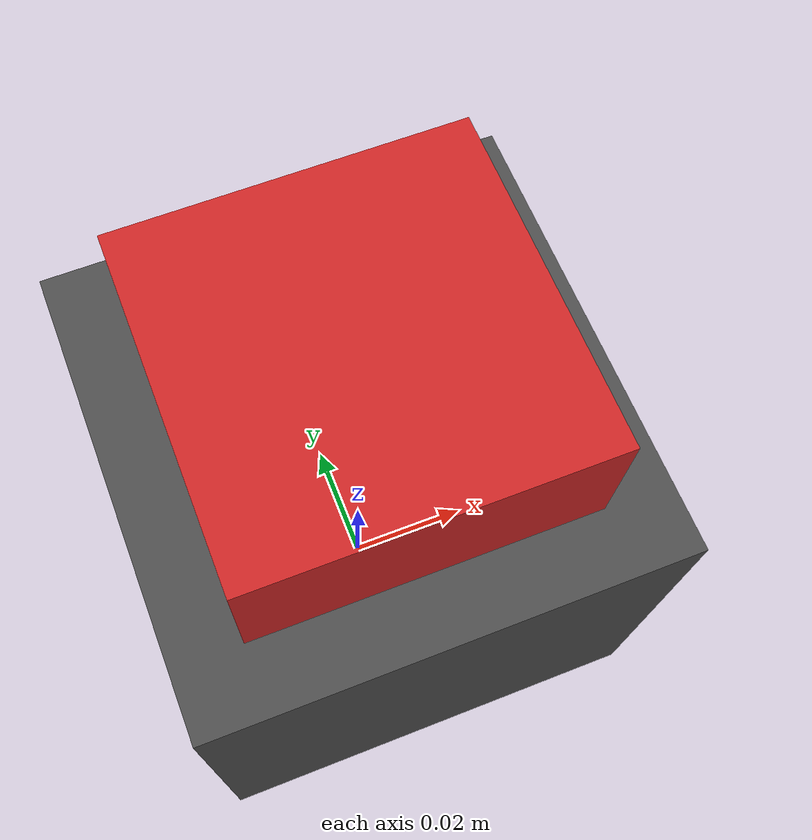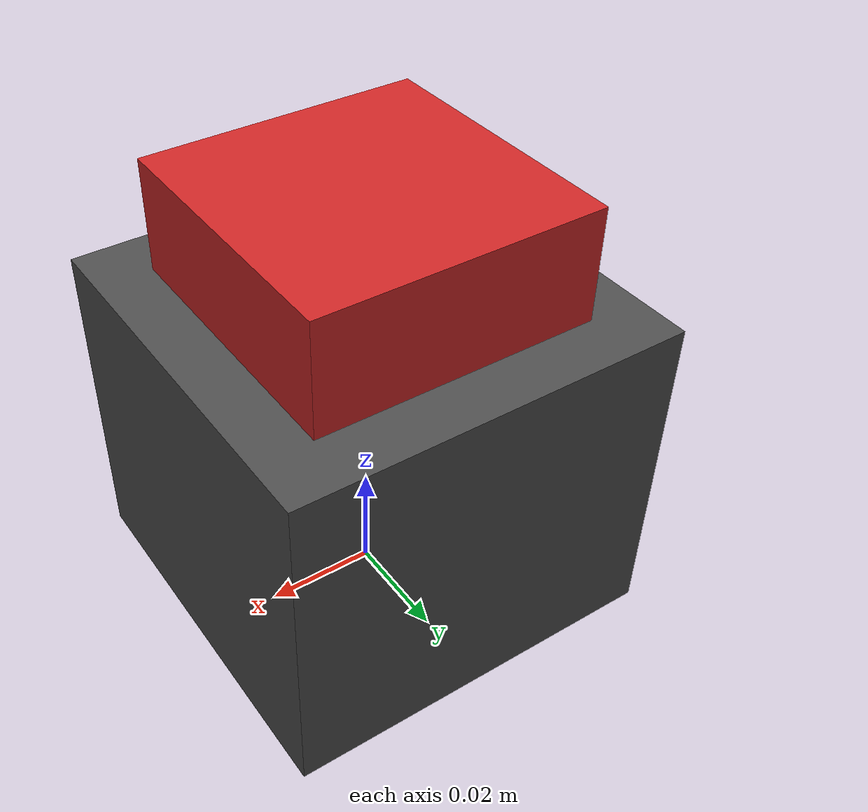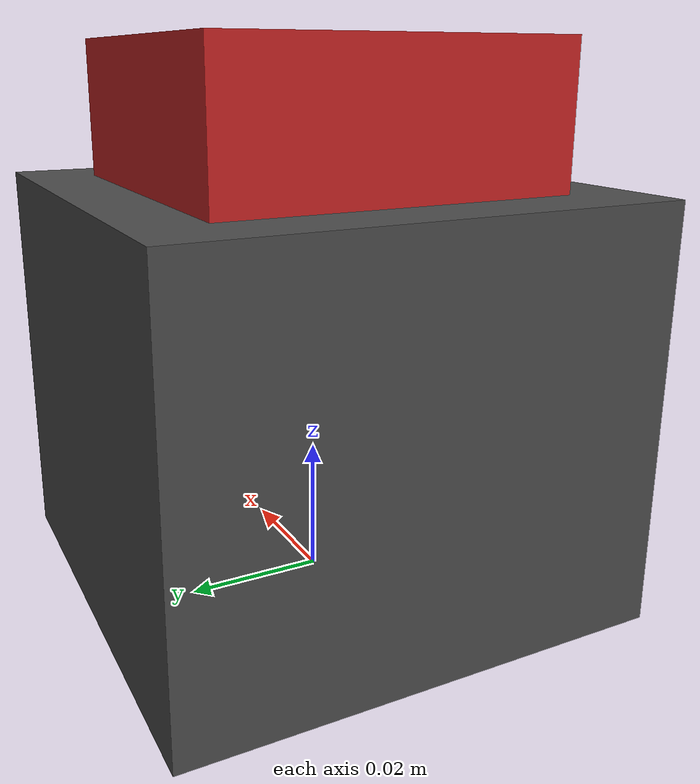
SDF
<?xml version="1.0"?>
<sdf version="1.5">
  <model name="button">
    <pose>0 0 0.03 0 0 0</pose>
    <link name="base_link">
    <static>static</static>
      <inertial>
        <inertia>
          <ixx>0.01</ixx>
          <ixy>0.0</ixy>
          <ixz>0.0</ixz>
          <iyy>0.01</iyy>
          <iyz>0.0</iyz>
          <izz>0.01</izz>
        </inertia>
        <mass>1.0</mass>
      </inertial>
      <visual name="visual">
        <geometry>
          <box>
            <size>0.07 0.07 0.06</size>
          </box>
        </geometry>
        <material>
          <script><uri>file://media/materials/scripts/gazebo.material</uri>
          <name>Gazebo/DarkGrey</name></script>
        </material>
      </visual>
      <collision name="collision">
        <geometry>
          <box>
            <size>0.07 0.07 0.06</size>
          </box>
        </geometry>
      </collision>
    </link>
    <joint name="joint" type="prismatic">
      <parent>base_link</parent>
      <child>top_link</child>
      <pose>0 0 0 0 0 0</pose>
      <axis>
        <limit>
          <lower>-0.020</lower>
          <upper>0.025</upper>
        </limit>
        <xyz>0.0 0.0 1.0</xyz>
        <dynamics>
          <spring_stiffness>-500</spring_stiffness>
          <spring_reference>-0.025</spring_reference>
          <damping>1.0</damping>
          <friction>1.0</friction>
        </dynamics>
      </axis>
    </joint>
    <link name="top_link">
      <pose>0 0 0 0 0 0</pose>
      <inertial>
        <inertia>
          <ixx>0.01</ixx>
          <ixy>0.0</ixy>
          <ixz>0.0</ixz>
          <iyy>0.01</iyy>
          <iyz>0.0</iyz>
          <izz>0.01</izz>
        </inertia>
        <mass>0.1</mass>
      </inertial>
      <visual name="visual">
        <pose>0 0 0.025 0 0 0</pose>
        <geometry>
          <box>
            <size>0.05 0.05 0.05</size>
          </box>
        </geometry>
        <material>
          <script>
            <uri>file://media/materials/scripts/gazebo.material</uri>
            <name>Gazebo/Red</name>
          </script>
        </material>
      </visual>
      <collision name="collision">
        <pose>0 0 0.025 0 0 0</pose>
        <geometry>
          <box>
            <size>0.05 0.05 0.05</size>
          </box>
        </geometry>
        <surface>
          <contact>
            <ode>
              <kp>1e5</kp>
              <kd>1</kd>
              <max_vel>100.0</max_vel>
              <min_depth>0.001</min_depth>
            </ode>
          </contact>
        </surface>
      </collision>
    </link>
  </model>
</sdf>
